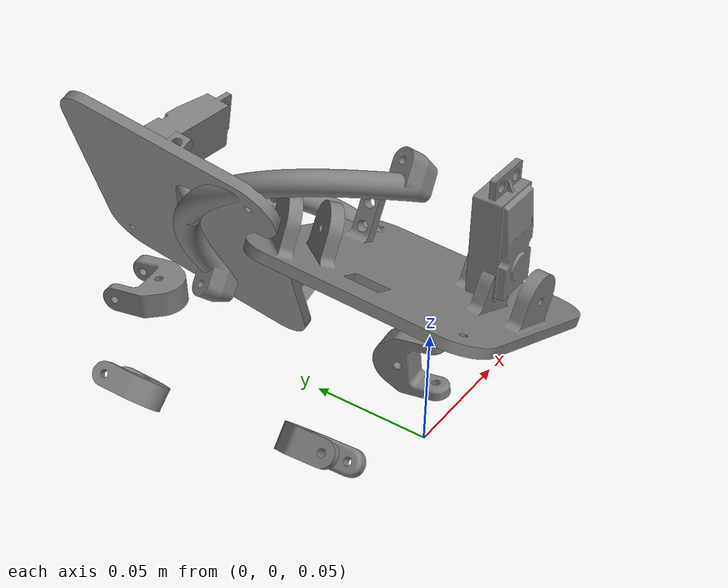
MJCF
<?xml version='1.0' encoding='UTF-8'?>
<!-- Fused single-module robot: all parts rigid in one body -->
<mujoco model="snakebot">
  <compiler angle="radian" meshdir="assets" autolimits="true"/>
  <option timestep="0.002" gravity="0 0 -9.81" iterations="80" integrator="implicitfast"/>
  <default>
    <default class="fused-module">
      <joint damping="0.01" frictionloss="0.01" armature="0.002"/>
      <default class="visual">
        <geom type="mesh" contype="0" conaffinity="0" group="2"/>
      </default>
      <default class="collision">
        <geom group="3" friction="1.2 0.03 0.01"/>
      </default>
    </default>
  </default>
  <asset>
    <mesh name="danda_support_v5" file="danda_support_v5.stl"/>
    <mesh name="danda_v4" file="danda_v4.stl"/>
    <mesh name="fusioncomponent" file="fusioncomponent.stl"/>
    <mesh name="fusioncomponent__2" file="fusioncomponent__2.stl"/>
    <mesh name="servo_motor_35kg_motor_v1" file="servo_motor_35kg_motor_v1.stl"/>
    <material name="servo_motor_35kg_motor_v1_material" rgba="0.101961 0.101961 0.101961 1"/>
    <material name="fusioncomponent_material" rgba="0.627451 0.627451 0.627451 1"/>
    <material name="fusioncomponent__2_material" rgba="0.627451 0.627451 0.627451 1"/>
    <material name="danda_v4_material" rgba="0.627451 0.627451 0.627451 1"/>
    <material name="danda_support_v5_material" rgba="0.627451 0.627451 0.627451 1"/>
    <material name="default_material" rgba="0.866667 0.909804 1 1"/>
  </asset>
  <worldbody>
    <body name="fused_module" pos="0 0 0.13" quat="1 0 0 0" childclass="fused-module">
      <freejoint name="fused_module_freejoint"/>
      <inertial pos="0 0 0" mass="1.0500" fullinertia="0.001 0.001 0.001 0 0 0"/>
      <geom type="mesh" class="visual"    pos="0.0087362384 0.014000003 0.017475516"   quat="0 0.71174413 0 0.70243882"                           mesh="servo_motor_35kg_motor_v1"/>
      <geom type="mesh" class="collision" pos="0.0087362384 0.014000003 0.017475516"   quat="0 0.71174413 0 0.70243882"                           mesh="servo_motor_35kg_motor_v1"/>
      <geom type="mesh" class="visual"    pos="0.0010113123 0.007041815 -0.006140756"  quat="0.36960599 0.60461793 0.58462025 0.39502877"          mesh="fusioncomponent"/>
      <geom type="mesh" class="collision" pos="0.0010113123 0.007041815 -0.006140756"  quat="0.36960599 0.60461793 0.58462025 0.39502877"          mesh="fusioncomponent"/>
      <geom type="mesh" class="visual"    pos="-0.0365576 0.017133435 -0.00064678064"  quat="-2.0509837e-08 -5.7787091e-07 0.035469741 0.99937075" mesh="fusioncomponent__2"/>
      <geom type="mesh" class="collision" pos="-0.0365576 0.017133435 -0.00064678064"  quat="-2.0509837e-08 -5.7787091e-07 0.035469741 0.99937075" mesh="fusioncomponent__2"/>
      <geom type="mesh" class="visual"    pos="-0.0049631274 0.05877214 0.010004037"   quat="0.28862463 -0.31023058 -0.61746993 0.66270936"         mesh="danda_v4"/>
      <geom type="mesh" class="collision" pos="-0.0049631274 0.05877214 0.010004037"   quat="0.28862463 -0.31023058 -0.61746993 0.66270936"         mesh="danda_v4"/>
      <geom type="mesh" class="visual"    pos="0.031589195 0.017103494 -0.032658373"   quat="-0.029703132 0.38152824 0.071709613 0.92109264"         mesh="fusioncomponent__2"/>
      <geom type="mesh" class="collision" pos="0.031589195 0.017103494 -0.032658373"   quat="-0.029703132 0.38152824 0.071709613 0.92109264"         mesh="fusioncomponent__2"/>
      <geom type="mesh" class="visual"    pos="-0.017560204 0.047950194 -0.015886559"  quat="0.41671574 0.63648596 0.6353989 0.13229454"            mesh="danda_support_v5"/>
      <geom type="mesh" class="collision" pos="-0.017560204 0.047950194 -0.015886559"  quat="0.41671574 0.63648596 0.6353989 0.13229454"            mesh="danda_support_v5"/>
      <geom type="mesh" class="visual"    pos="-0.042190954 0.08430301 0.026233933"    quat="0.91973002 -0.059853439 0.38356698 0.058229047"         mesh="fusioncomponent__2"/>
      <geom type="mesh" class="collision" pos="-0.042190954 0.08430301 0.026233933"    quat="0.91973002 -0.059853439 0.38356698 0.058229047"         mesh="fusioncomponent__2"/>
      <geom type="mesh" class="visual"    pos="-0.016475858 0.097202901 -0.00409347"   quat="0.67773883 0.19186599 -0.10040532 -0.70269217"          mesh="fusioncomponent"/>
      <geom type="mesh" class="collision" pos="-0.016475858 0.097202901 -0.00409347"   quat="0.67773883 0.19186599 -0.10040532 -0.70269217"          mesh="fusioncomponent"/>
      <geom type="mesh" class="visual"    pos="0.0068124839 0.088041572 0.002194585"   quat="0.99727345 0.06879887 0.00028438854 -0.026689114"       mesh="servo_motor_35kg_motor_v1"/>
      <geom type="mesh" class="collision" pos="0.0068124839 0.088041572 0.002194585"   quat="0.99727345 0.06879887 0.00028438854 -0.026689114"       mesh="servo_motor_35kg_motor_v1"/>
      <geom type="mesh" class="visual"    pos="-0.011151864 0.092118555 -0.042788866"  quat="0.70350497 0.007890183 0.70490899 0.090121133"          mesh="fusioncomponent__2"/>
      <geom type="mesh" class="collision" pos="-0.011151864 0.092118555 -0.042788866"  quat="0.70350497 0.007890183 0.70490899 0.090121133"          mesh="fusioncomponent__2"/>
    </body>
  </worldbody>
</mujoco>
